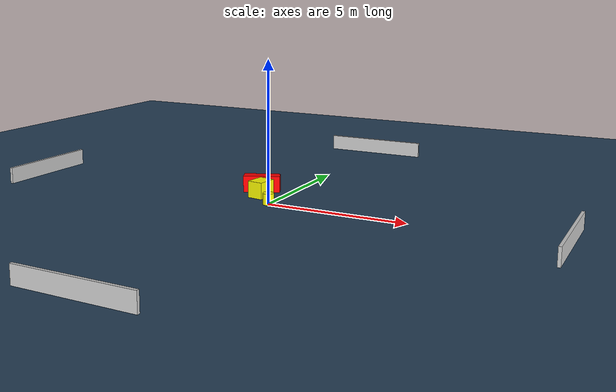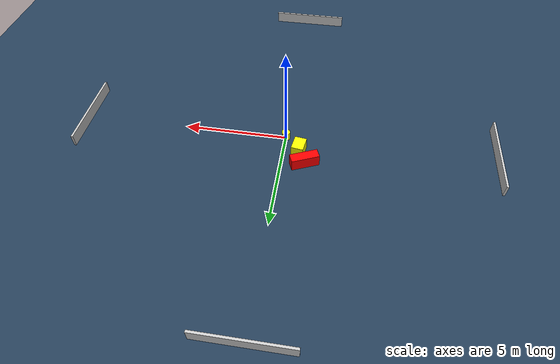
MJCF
<?xml version="1.0" ?>
<mujoco model="generated_environment">
  <option timestep="0.01" integrator="RK4" cone="elliptic"/>
  <default>
    <geom density="1"/>
  </default>
  <asset>
    <texture builtin="gradient" height="3072" name="skybox" rgb1="0.3 0.5 0.7" rgb2="0 0 0" type="skybox" width="512"/>
    <texture builtin="checker" height="300" name="groundplane" rgb1="0.2 0.3 0.4" rgb2="0.1 0.2 0.3" type="2d" width="300"/>
    <material name="groundplane" reflectance="0.2" texrepeat="5 5" texture="groundplane"/>
  </asset>
  <worldbody>
    <light dir="0 0 -1" directional="true" pos="0 0 1.5"/>
    <geom condim="3" friction="0.5 0.005 0.001" material="groundplane" name="floor" pos="0 0 0" size="0 0 0.05" type="plane"/>
    <body name="walls">
      <geom name="wall_1" condim="4" pos="-10.0 0.0 0.3" rgba="0.800000011920929 0.800000011920929 0.800000011920929 1.0" size="0.05 2.0 0.3" type="box"/>
      <geom name="wall_2" condim="4" pos="10.0 0.0 0.3" rgba="0.800000011920929 0.800000011920929 0.800000011920929 1.0" size="0.05 2.0 0.3" type="box"/>
      <geom name="wall_3" condim="4" pos="0.0 -10.0 0.3" rgba="0.800000011920929 0.800000011920929 0.800000011920929 1.0" size="2.0 0.05 0.3" type="box"/>
      <geom name="wall_4" condim="4" pos="0.0 10.0 0.3" rgba="0.800000011920929 0.800000011920929 0.800000011920929 1.0" size="2.0 0.05 0.3" type="box"/>
    </body>
    <body name="robot">
      <joint name="joint_x" type="slide" pos="0 0 0" axis="1 0 0"/>
      <joint name="joint_y" type="slide" pos="0 0 0" axis="0 1 0"/>
      <geom name="robot" type="cylinder" pos="0.0 0.0 0.2" size="0.2 0.2 0.0" mass="5.0" friction="1.0 0.005 0.0001" condim="4" rgba="1.0 1.0 0.0 1.0"/>
    </body>
    <body name="obstacle_1_movable">
      <geom name="obstacle_1_movable" condim="4" pos="-0.7336462821174642 0.799439771620454 0.3" euler="0 0 171.86443063654008" friction="0.0 0.005 0.001" rgba="1.0 1.0 0.0 1.0" size="0.28681656624851243 0.3658219679003751 0.3" type="box" mass="0.1"/>
      <joint type="free"/>
    </body>
    <body name="obstacle_2_static">
      <geom name="obstacle_2_static" condim="4" pos="-1.0836024823720074 1.5206225123456012 0.3" euler="0 0 23.011812784261643" friction="0.0 0.005 0.001" rgba="1.0 0.0 0.0 1.0" size="0.6626525400975429 0.2254204708246598 0.3" type="box"/>
    </body>
  </worldbody>
  <actuator>
    <motor name="actuator_x" joint="joint_x" gear="1" ctrlrange="-1 1"/>
    <motor name="actuator_y" joint="joint_y" gear="1" ctrlrange="-1 1"/>
  </actuator>
</mujoco>
